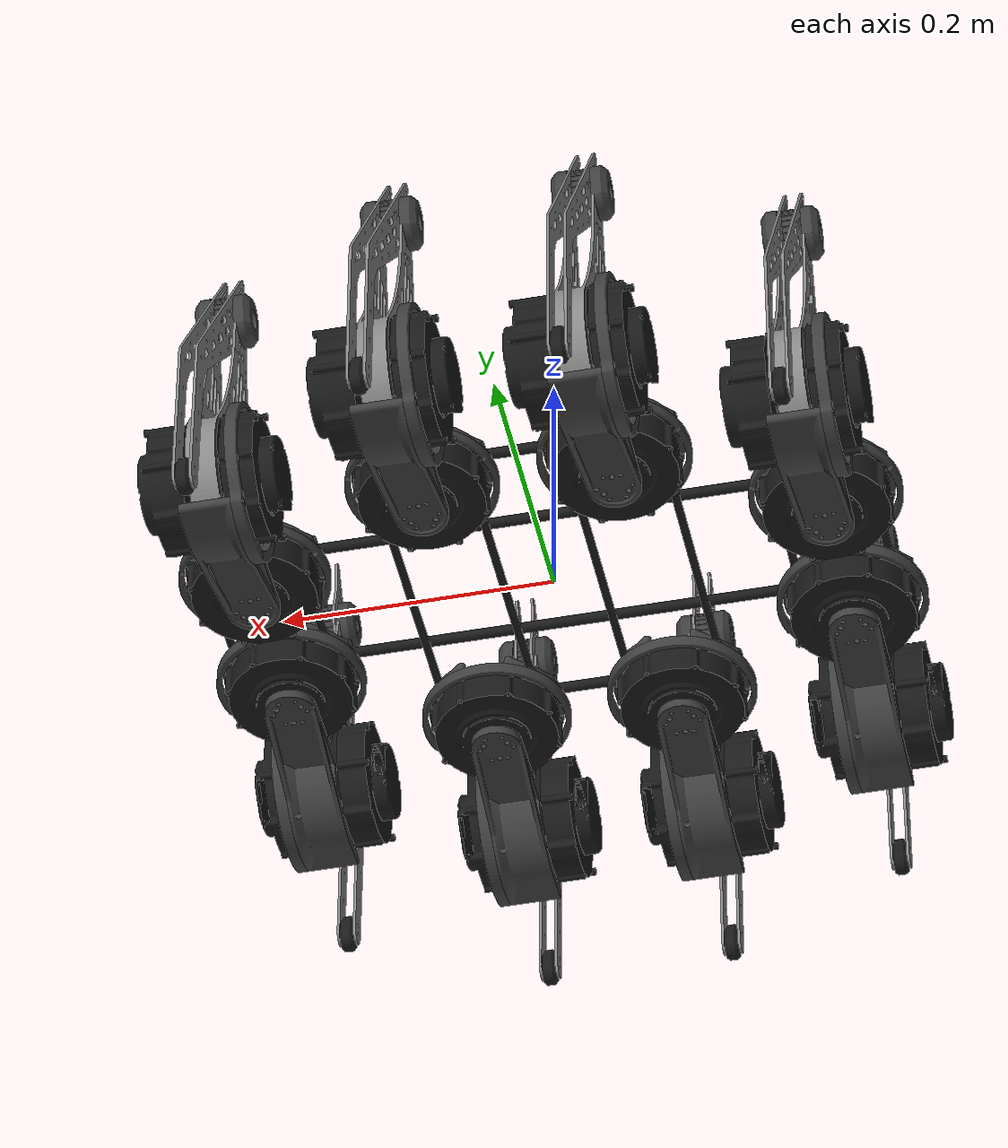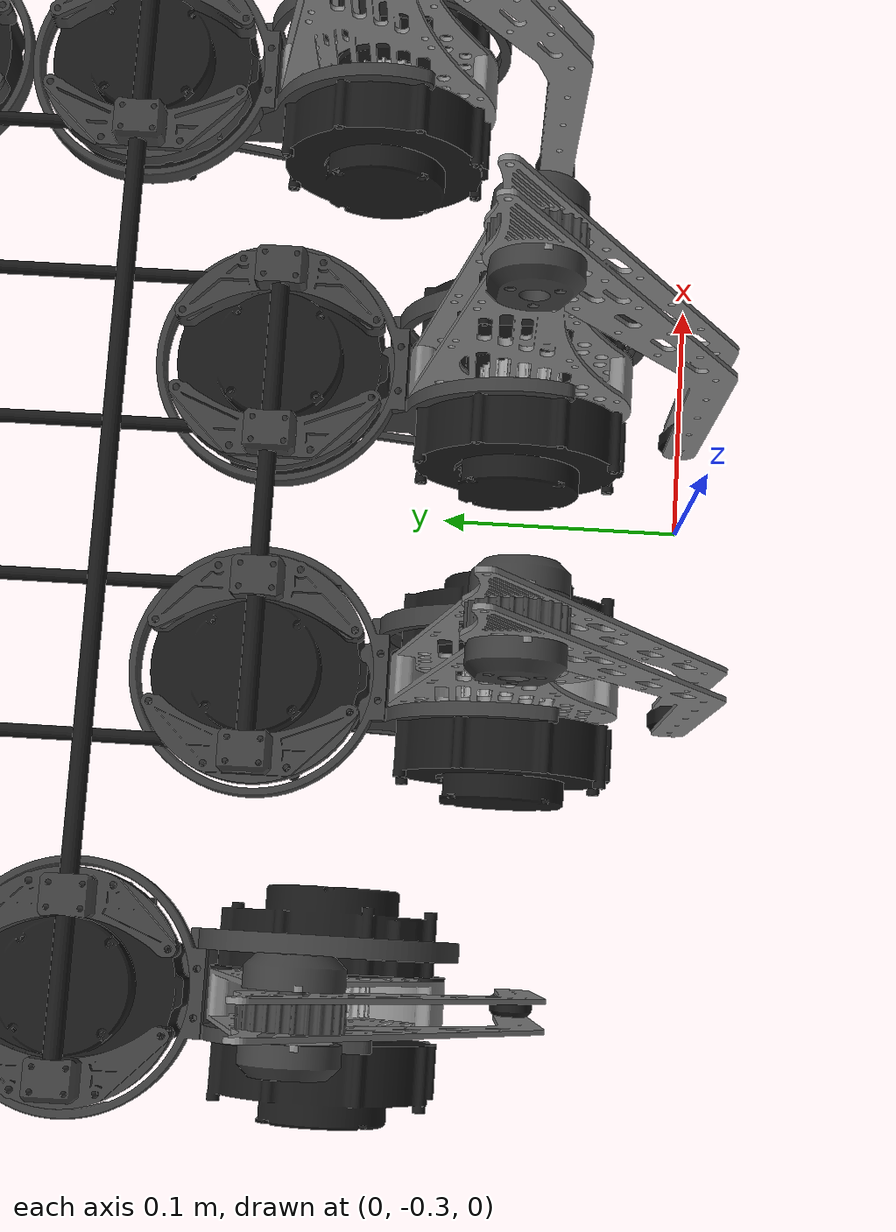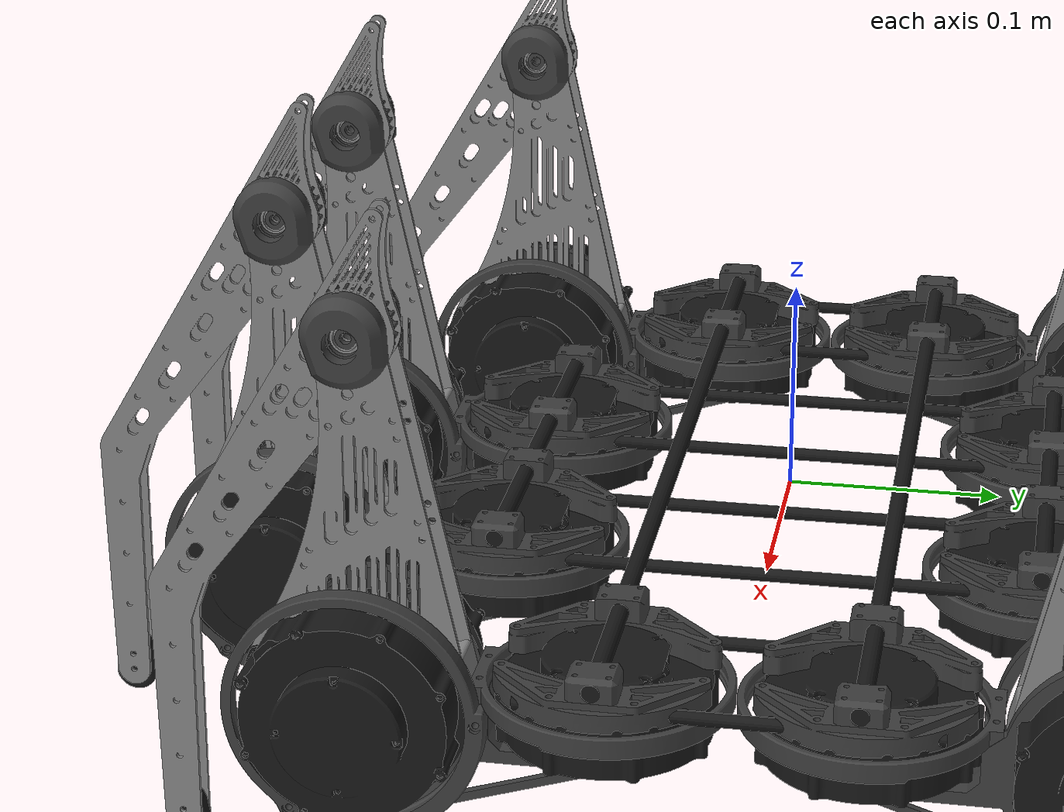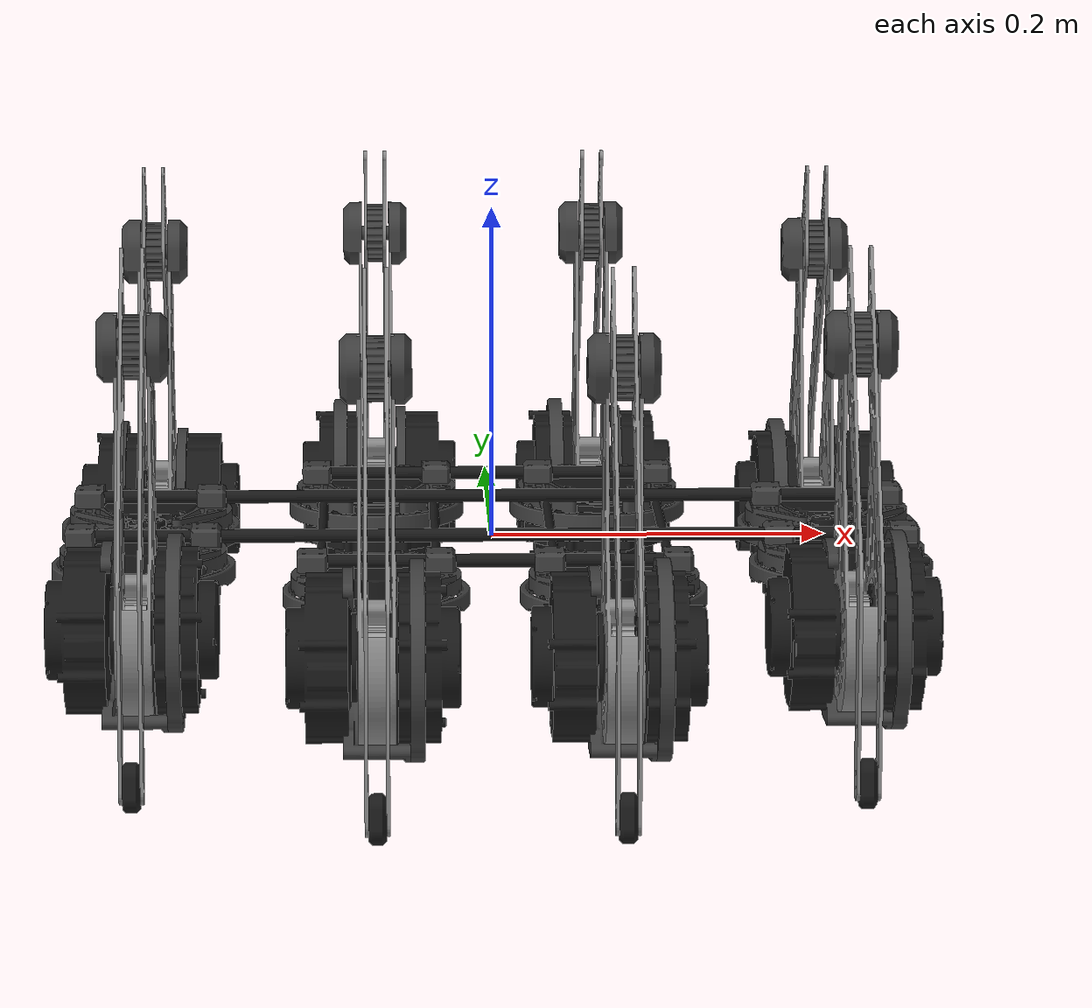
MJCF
<!-- Wraps the model exported by Fusion360 (v2/SpiderBot.xml) with actuator definitions -->
<mujoco model="SpiderBot">
  <compiler angle="radian" />
  <default>
    <motor gear="1" forcelimited="true" forcerange="-22.0 22.0" />
    <joint limited="true" actuatorfrclimited="true" actuatorfrcrange="-22.0 22.0" />
  </default>
  <worldbody>
  </worldbody>
  <include file="v2/SpiderBot.xml" />
  <actuator>
    <!-- Right leg joints-->
    <motor name="R1_Hip" joint="R1_Hip" />
    <motor name="R1_Femur" joint="R1_Femur" />
    <motor name="R1_Tibia" joint="R1_Tibia" />
    <motor name="R2_Hip" joint="R2_Hip" />
    <motor name="R2_Femur" joint="R2_Femur" />
    <motor name="R2_Tibia" joint="R2_Tibia" />
    <motor name="R3_Hip" joint="R3_Hip" />
    <motor name="R3_Femur" joint="R3_Femur" />
    <motor name="R3_Tibia" joint="R3_Tibia" />
    <motor name="R4_Hip" joint="R4_Hip" />
    <motor name="R4_Femur" joint="R4_Femur" />
    <motor name="R4_Tibia" joint="R4_Tibia" />

    <!-- Left leg joints -->
    <motor name="L1_Hip" joint="L1_Hip" />
    <motor name="L1_Femur" joint="L1_Femur" />
    <motor name="L1_Tibia" joint="L1_Tibia" />
    <motor name="L2_Hip" joint="L2_Hip" />
    <motor name="L2_Femur" joint="L2_Femur" />
    <motor name="L2_Tibia" joint="L2_Tibia" />
    <motor name="L3_Hip" joint="L3_Hip" />
    <motor name="L3_Femur" joint="L3_Femur" />
    <motor name="L3_Tibia" joint="L3_Tibia" />
    <motor name="L4_Hip" joint="L4_Hip" />
    <motor name="L4_Femur" joint="L4_Femur" />
    <motor name="L4_Tibia" joint="L4_Tibia" />
  </actuator>
</mujoco>
